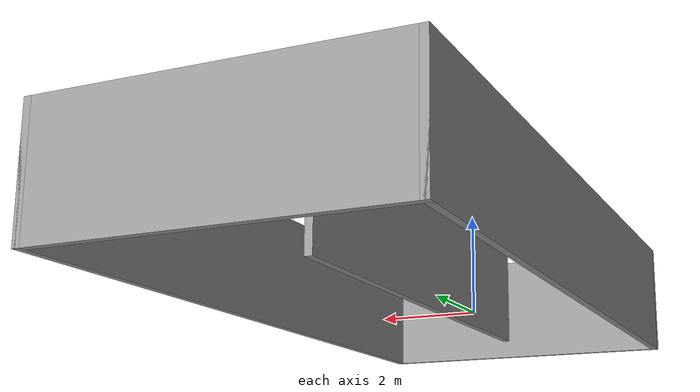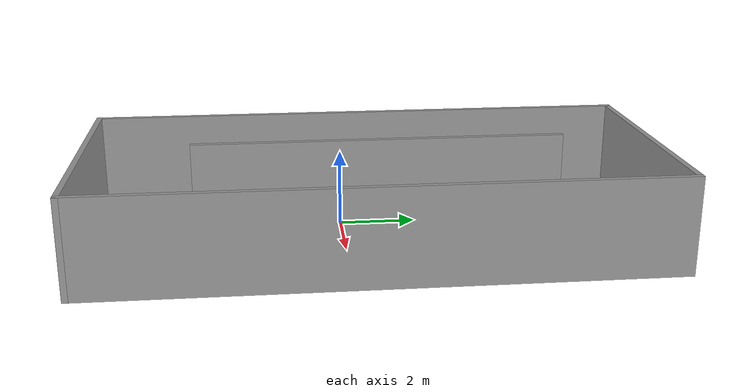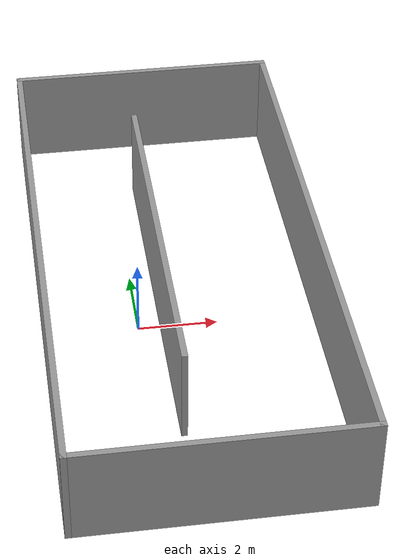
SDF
<?xml version='1.0'?>
<sdf version='1.6'>
  <model name='iros_wall'>
    <pose frame=''>1.092 0.747 0 0 -0 0</pose>
    <link name='Wall_0'>
      <collision name='Wall_0_Collision'>
        <geometry>
          <box>
            <size>7 0.15 2.5</size>
          </box>
        </geometry>
        <pose frame=''>0 0 1.25 0 -0 0</pose>
      </collision>
      <visual name='Wall_0_Visual'>
        <pose frame=''>0 0 1.25 0 -0 0</pose>
        <geometry>
          <box>
            <size>7 0.15 2.5</size>
          </box>
        </geometry>
        <material>
          <script>
            <uri>file://media/materials/scripts/gazebo.material</uri>
            <name>Gazebo/Grey</name>
          </script>
          <ambient>1 1 1 1</ambient>
        </material>
      </visual>
      <pose frame=''>0 7.3 0 0 -0 0</pose>
    </link>
    <link name='Wall_1'>
      <collision name='Wall_1_Collision'>
        <geometry>
          <box>
            <size>14.75 0.15 2.5</size>
          </box>
        </geometry>
        <pose frame=''>0 0 1.25 0 -0 0</pose>
      </collision>
      <visual name='Wall_1_Visual'>
        <pose frame=''>0 0 1.25 0 -0 0</pose>
        <geometry>
          <box>
            <size>14.75 0.15 2.5</size>
          </box>
        </geometry>
        <material>
          <script>
            <uri>file://media/materials/scripts/gazebo.material</uri>
            <name>Gazebo/Grey</name>
          </script>
          <ambient>1 1 1 1</ambient>
        </material>
      </visual>
      <pose frame=''>3.425 0 0 0 0 -1.5708</pose>
    </link>
    <link name='Wall_2'>
      <collision name='Wall_2_Collision'>
        <geometry>
          <box>
            <size>7 0.15 2.5</size>
          </box>
        </geometry>
        <pose frame=''>0 0 1.25 0 -0 0</pose>
      </collision>
      <visual name='Wall_2_Visual'>
        <pose frame=''>0 0 1.25 0 -0 0</pose>
        <geometry>
          <box>
            <size>7 0.15 2.5</size>
          </box>
        </geometry>
        <material>
          <script>
            <uri>file://media/materials/scripts/gazebo.material</uri>
            <name>Gazebo/Grey</name>
          </script>
          <ambient>1 1 1 1</ambient>
        </material>
      </visual>
      <pose frame=''>0 -7.3 0 0 -0 3.14159</pose>
    </link>
    <link name='Wall_3'>
      <collision name='Wall_3_Collision'>
        <geometry>
          <box>
            <size>14.75 0.15 2.5</size>
          </box>
        </geometry>
        <pose frame=''>0 0 1.25 0 -0 0</pose>
      </collision>
      <visual name='Wall_3_Visual'>
        <pose frame=''>0 0 1.25 0 -0 0</pose>
        <geometry>
          <box>
            <size>14.75 0.15 2.5</size>
          </box>
        </geometry>
        <material>
          <script>
            <uri>file://media/materials/scripts/gazebo.material</uri>
            <name>Gazebo/Grey</name>
          </script>
          <ambient>1 1 1 1</ambient>
        </material>
      </visual>
      <pose frame=''>-3.425 0 0 0 -0 1.5708</pose>
    </link>
    <link name='Wall_5'>
      <collision name='Wall_5_Collision'>
        <geometry>
          <box>
            <size>9.75 0.15 2.5</size>
          </box>
        </geometry>
        <pose frame=''>0 0 1.25 0 -0 0</pose>
      </collision>
      <visual name='Wall_5_Visual'>
        <pose frame=''>0 0 1.25 0 -0 0</pose>
        <geometry>
          <box>
            <size>9.75 0.15 2.5</size>
          </box>
        </geometry>
        <material>
          <script>
            <uri>file://media/materials/scripts/gazebo.material</uri>
            <name>Gazebo/Grey</name>
          </script>
          <ambient>1 1 1 1</ambient>
        </material>
      </visual>
      <pose frame=''>-0.471326 0.246941 0 0 -0 1.5708</pose>
    </link>
    <static>1</static>
  </model>
</sdf>
